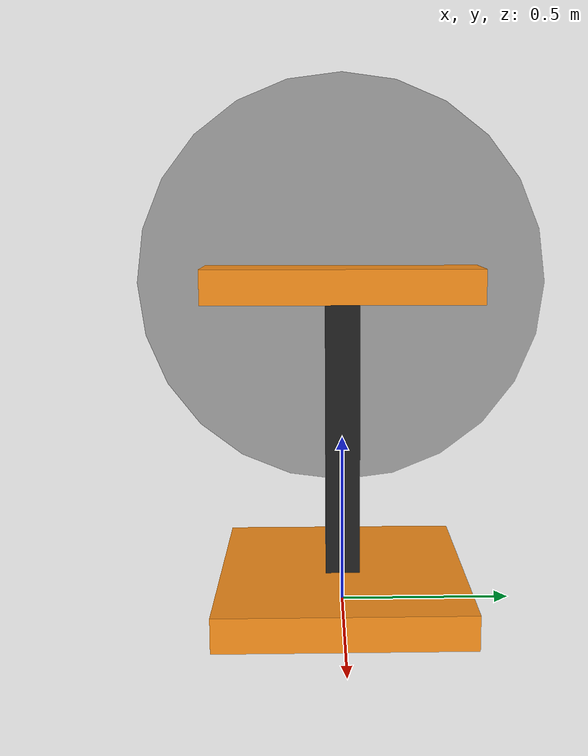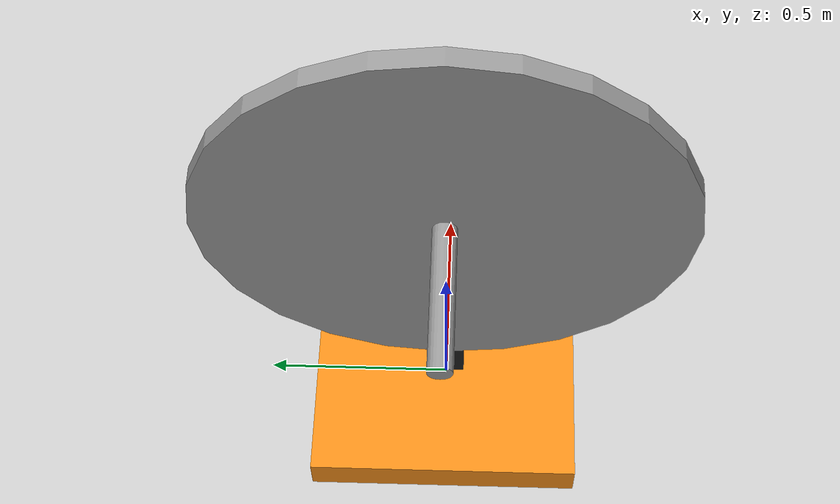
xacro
<?xml version="1.0"?>
<robot name="antenna" xmlns:xacro="http://www.ros.org/wiki/xacro">

  <xacro:property name="pi" value="3.1415926535897931"/>
  <xacro:property name="mass" value="1" />

  <xacro:include filename="$(find antenna_description)/urdf/antenna.gazebo" />

  <link name="world"/>

  <joint name="fixed" type="fixed">
    <parent link="world"/>
    <child link="link1"/>
  </joint>

<!-- LINK 1 -->
  <link name="link1">
    <collision>
      <origin xyz="0 0 0.05" rpy="0 0 0"/>
      <geometry>
      	<box size="0.72 0.72 0.1"/>
      </geometry>
    </collision>

    <visual>
      <origin xyz="0 0 0.05" rpy="0 0 0"/>
      <geometry>
	       <box size="0.72 0.72 0.1"/>
      </geometry>
    </visual>

    <inertial>
      <origin xyz="0 0 0.05" rpy="0 0 0"/>
      <mass value="${mass}"/>
      <inertia
  	  ixx="1" ixy="0.0" ixz="0.0"
  	  iyy="1" iyz="0.0"
  	  izz="1"/>
    </inertial>
  </link>

<!-- LEG JOINT -->
  <joint name="leg_joint" type="continuous">
    <parent link="link1"/>
    <child link="link2"/>
    <origin xyz="0 0 0.5" rpy="0 0 0"/>
    <axis xyz="0 0 1"/>
    <dynamics damping="0.7"/>
  </joint>

<!-- LINK 2 -->
  <link name="link2">
    <collision>
      <origin xyz="0 0 0" rpy="0 0 0"/>
      <geometry>
        <box size="0.1 0.1 0.8"/>
      </geometry>
    </collision>

    <visual>
      <origin xyz="0 0 0" rpy="0 0 0"/>
      <geometry>
        <box size="0.1 0.1 0.8"/>
      </geometry>
    </visual>

    <inertial>
      <origin xyz="0 0 0.4" rpy="0 0 0"/>
      <mass value="${mass * 4.69}"/>
      <inertia
  	  ixx="0.25" ixy="0.0" ixz="0.0"
  	  iyy="0.25" iyz="0.0"
  	  izz="0.006"/>
    </inertial>
  </link>

<!-- DISH JOINT -->
  <joint name="dish_joint" type="revolute">
    <parent link="link2"/>
    <child link="link3"/>
    <origin xyz="0 0 0.45" rpy="0 ${pi / (-2)} 0"/>
    <axis xyz="0 1 0"/>
    <limit effort="30" lower="0" upper="${pi}" velocity="10"/>
    <dynamics damping="0" friction="10"/>
  </joint>

<!-- LINK 3 -->
  <link name="link3">
    <collision>
      <origin xyz="0 0 0" rpy="0 0 0"/>
      <geometry>
      	<box size="0.1 0.8 0.2"/>
      </geometry>
    </collision>

    <visual>
      <origin xyz="0 0 0" rpy="0 0 0"/>
      <geometry>
      	<box size="0.1 0.8 0.2"/>
      </geometry>
    </visual>

    <inertial>
      <origin xyz="0 0 0.1" rpy="0 0 0"/>
      <mass value="${mass * pi / 2}"/>
      <inertia
  	  ixx="0.0884" ixy="0.0" ixz="0.0"
  	  iyy="0.0065" iyz="0.0"
  	  izz="0.0845"/>
    </inertial>
  </link>

  <joint name="joint3" type="fixed">
    <parent link="link3"/>
    <child link="link4"/>
  </joint>

<!-- LINK 4 -->
  <link name="link4">
    <collision>
      <origin xyz="0 0 0.1" rpy="0 0 0"/>
      <geometry>
        <cylinder length="0.05" radius="0.6"/>
      </geometry>
    </collision>

    <visual>
      <origin xyz="0 0 0.1" rpy="0 0 0"/>
      <geometry>
        <cylinder length="0.05" radius="0.6"/>
      </geometry>
    </visual>

    <inertial>
      <mass value="${mass * 4}" />
      <origin xyz="0 0 0.025" rpy="0 0 0"/>
      <inertia ixx="0.00083" ixy="0" ixz="0" iyy="0.00083" iyz="0" izz="0.00083" />
    </inertial>
  </link>

  <joint name="joint4" type="fixed">
    <parent link="link4"/>
    <child link="link5"/>
  </joint>

<!-- LINK 5 -->
  <link name="link5">
    <collision>
      <origin xyz="0 0 0.25" rpy="0 0 0"/>
      <geometry>
        <cylinder length="0.5" radius="0.03"/>
      </geometry>
    </collision>

    <visual>
      <origin xyz="0 0 0.25" rpy="0 0 0"/>
      <geometry>
        <cylinder length="0.5" radius="0.03"/>
      </geometry>
    </visual>

    <inertial>
      <mass value="${mass * 0.05}" />
      <origin xyz="0 0 0.25" rpy="0 0 0"/>
      <inertia ixx="0.004" ixy="0" ixz="0" iyy="0.004" iyz="0" izz="0.004" />
    </inertial>
  </link>

  <transmission name="tran1">
    <type>transmission_interface/SimpleTransmission</type>
    <joint name="leg_joint">
      <hardwareInterface>hardware_interface/EffortJointInterface</hardwareInterface>
    </joint>
    <actuator name="motor1">
      <hardwareInterface>hardware_interface/EffortJointInterface</hardwareInterface>
      <mechanicalReduction>1</mechanicalReduction>
    </actuator>
  </transmission>

  <transmission name="tran2">
    <type>transmission_interface/SimpleTransmission</type>
    <joint name="dish_joint">
      <hardwareInterface>hardware_interface/EffortJointInterface</hardwareInterface>
    </joint>
    <actuator name="motor2">
      <hardwareInterface>hardware_interface/EffortJointInterface</hardwareInterface>
      <mechanicalReduction>1</mechanicalReduction>
    </actuator>
  </transmission>
</robot>
